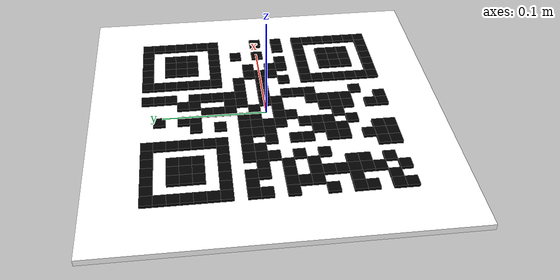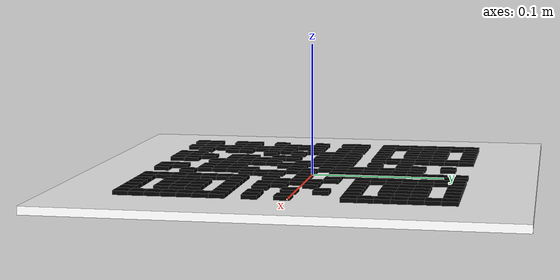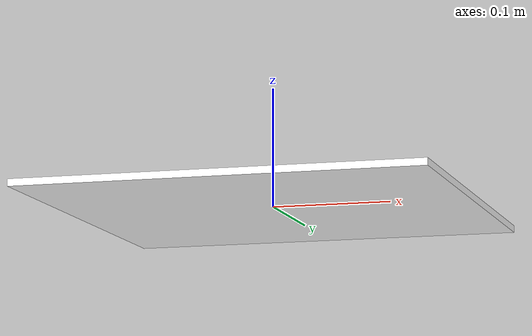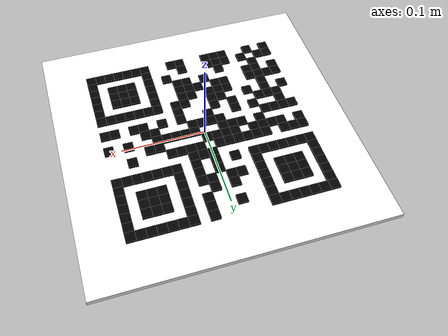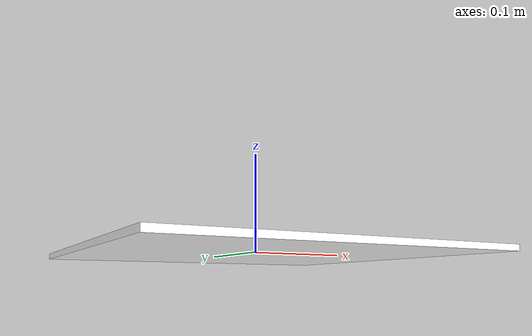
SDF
<?xml version="1.0"?>
<sdf version="1.8">
<model name="phase9_qr_geometry"><static>true</static><link name="link">
<visual name="white"><pose>0 0 0 0 0 0</pose><geometry><box><size>0.34 0.34 0.006</size></box></geometry><material><ambient>1 1 1 1</ambient><diffuse>1 1 1 1</diffuse></material></visual>
<visual name="m_0_0"><pose>0.1142857 0.1142857 0.004 0 0 0</pose><geometry><box><size>0.0114286 0.0114286 0.004</size></box></geometry><material><ambient>0 0 0 1</ambient><diffuse>0 0 0 1</diffuse></material></visual>
<visual name="m_0_1"><pose>0.1142857 0.1028571 0.004 0 0 0</pose><geometry><box><size>0.0114286 0.0114286 0.004</size></box></geometry><material><ambient>0 0 0 1</ambient><diffuse>0 0 0 1</diffuse></material></visual>
<visual name="m_0_2"><pose>0.1142857 0.0914286 0.004 0 0 0</pose><geometry><box><size>0.0114286 0.0114286 0.004</size></box></geometry><material><ambient>0 0 0 1</ambient><diffuse>0 0 0 1</diffuse></material></visual>
<visual name="m_0_3"><pose>0.1142857 0.0800000 0.004 0 0 0</pose><geometry><box><size>0.0114286 0.0114286 0.004</size></box></geometry><material><ambient>0 0 0 1</ambient><diffuse>0 0 0 1</diffuse></material></visual>
<visual name="m_0_4"><pose>0.1142857 0.0685714 0.004 0 0 0</pose><geometry><box><size>0.0114286 0.0114286 0.004</size></box></geometry><material><ambient>0 0 0 1</ambient><diffuse>0 0 0 1</diffuse></material></visual>
<visual name="m_0_5"><pose>0.1142857 0.0571429 0.004 0 0 0</pose><geometry><box><size>0.0114286 0.0114286 0.004</size></box></geometry><material><ambient>0 0 0 1</ambient><diffuse>0 0 0 1</diffuse></material></visual>
<visual name="m_0_6"><pose>0.1142857 0.0457143 0.004 0 0 0</pose><geometry><box><size>0.0114286 0.0114286 0.004</size></box></geometry><material><ambient>0 0 0 1</ambient><diffuse>0 0 0 1</diffuse></material></visual>
<visual name="m_0_10"><pose>0.1142857 0.0000000 0.004 0 0 0</pose><geometry><box><size>0.0114286 0.0114286 0.004</size></box></geometry><material><ambient>0 0 0 1</ambient><diffuse>0 0 0 1</diffuse></material></visual>
<visual name="m_0_12"><pose>0.1142857 -0.0228571 0.004 0 0 0</pose><geometry><box><size>0.0114286 0.0114286 0.004</size></box></geometry><material><ambient>0 0 0 1</ambient><diffuse>0 0 0 1</diffuse></material></visual>
<visual name="m_0_14"><pose>0.1142857 -0.0457143 0.004 0 0 0</pose><geometry><box><size>0.0114286 0.0114286 0.004</size></box></geometry><material><ambient>0 0 0 1</ambient><diffuse>0 0 0 1</diffuse></material></visual>
<visual name="m_0_15"><pose>0.1142857 -0.0571429 0.004 0 0 0</pose><geometry><box><size>0.0114286 0.0114286 0.004</size></box></geometry><material><ambient>0 0 0 1</ambient><diffuse>0 0 0 1</diffuse></material></visual>
<visual name="m_0_16"><pose>0.1142857 -0.0685714 0.004 0 0 0</pose><geometry><box><size>0.0114286 0.0114286 0.004</size></box></geometry><material><ambient>0 0 0 1</ambient><diffuse>0 0 0 1</diffuse></material></visual>
<visual name="m_0_17"><pose>0.1142857 -0.0800000 0.004 0 0 0</pose><geometry><box><size>0.0114286 0.0114286 0.004</size></box></geometry><material><ambient>0 0 0 1</ambient><diffuse>0 0 0 1</diffuse></material></visual>
<visual name="m_0_18"><pose>0.1142857 -0.0914286 0.004 0 0 0</pose><geometry><box><size>0.0114286 0.0114286 0.004</size></box></geometry><material><ambient>0 0 0 1</ambient><diffuse>0 0 0 1</diffuse></material></visual>
<visual name="m_0_19"><pose>0.1142857 -0.1028571 0.004 0 0 0</pose><geometry><box><size>0.0114286 0.0114286 0.004</size></box></geometry><material><ambient>0 0 0 1</ambient><diffuse>0 0 0 1</diffuse></material></visual>
<visual name="m_0_20"><pose>0.1142857 -0.1142857 0.004 0 0 0</pose><geometry><box><size>0.0114286 0.0114286 0.004</size></box></geometry><material><ambient>0 0 0 1</ambient><diffuse>0 0 0 1</diffuse></material></visual>
<visual name="m_1_0"><pose>0.1028571 0.1142857 0.004 0 0 0</pose><geometry><box><size>0.0114286 0.0114286 0.004</size></box></geometry><material><ambient>0 0 0 1</ambient><diffuse>0 0 0 1</diffuse></material></visual>
<visual name="m_1_6"><pose>0.1028571 0.0457143 0.004 0 0 0</pose><geometry><box><size>0.0114286 0.0114286 0.004</size></box></geometry><material><ambient>0 0 0 1</ambient><diffuse>0 0 0 1</diffuse></material></visual>
<visual name="m_1_12"><pose>0.1028571 -0.0228571 0.004 0 0 0</pose><geometry><box><size>0.0114286 0.0114286 0.004</size></box></geometry><material><ambient>0 0 0 1</ambient><diffuse>0 0 0 1</diffuse></material></visual>
<visual name="m_1_14"><pose>0.1028571 -0.0457143 0.004 0 0 0</pose><geometry><box><size>0.0114286 0.0114286 0.004</size></box></geometry><material><ambient>0 0 0 1</ambient><diffuse>0 0 0 1</diffuse></material></visual>
<visual name="m_1_20"><pose>0.1028571 -0.1142857 0.004 0 0 0</pose><geometry><box><size>0.0114286 0.0114286 0.004</size></box></geometry><material><ambient>0 0 0 1</ambient><diffuse>0 0 0 1</diffuse></material></visual>
<visual name="m_2_0"><pose>0.0914286 0.1142857 0.004 0 0 0</pose><geometry><box><size>0.0114286 0.0114286 0.004</size></box></geometry><material><ambient>0 0 0 1</ambient><diffuse>0 0 0 1</diffuse></material></visual>
<visual name="m_2_2"><pose>0.0914286 0.0914286 0.004 0 0 0</pose><geometry><box><size>0.0114286 0.0114286 0.004</size></box></geometry><material><ambient>0 0 0 1</ambient><diffuse>0 0 0 1</diffuse></material></visual>
<visual name="m_2_3"><pose>0.0914286 0.0800000 0.004 0 0 0</pose><geometry><box><size>0.0114286 0.0114286 0.004</size></box></geometry><material><ambient>0 0 0 1</ambient><diffuse>0 0 0 1</diffuse></material></visual>
<visual name="m_2_4"><pose>0.0914286 0.0685714 0.004 0 0 0</pose><geometry><box><size>0.0114286 0.0114286 0.004</size></box></geometry><material><ambient>0 0 0 1</ambient><diffuse>0 0 0 1</diffuse></material></visual>
<visual name="m_2_6"><pose>0.0914286 0.0457143 0.004 0 0 0</pose><geometry><box><size>0.0114286 0.0114286 0.004</size></box></geometry><material><ambient>0 0 0 1</ambient><diffuse>0 0 0 1</diffuse></material></visual>
<visual name="m_2_8"><pose>0.0914286 0.0228571 0.004 0 0 0</pose><geometry><box><size>0.0114286 0.0114286 0.004</size></box></geometry><material><ambient>0 0 0 1</ambient><diffuse>0 0 0 1</diffuse></material></visual>
<visual name="m_2_10"><pose>0.0914286 0.0000000 0.004 0 0 0</pose><geometry><box><size>0.0114286 0.0114286 0.004</size></box></geometry><material><ambient>0 0 0 1</ambient><diffuse>0 0 0 1</diffuse></material></visual>
<visual name="m_2_14"><pose>0.0914286 -0.0457143 0.004 0 0 0</pose><geometry><box><size>0.0114286 0.0114286 0.004</size></box></geometry><material><ambient>0 0 0 1</ambient><diffuse>0 0 0 1</diffuse></material></visual>
<visual name="m_2_16"><pose>0.0914286 -0.0685714 0.004 0 0 0</pose><geometry><box><size>0.0114286 0.0114286 0.004</size></box></geometry><material><ambient>0 0 0 1</ambient><diffuse>0 0 0 1</diffuse></material></visual>
<visual name="m_2_17"><pose>0.0914286 -0.0800000 0.004 0 0 0</pose><geometry><box><size>0.0114286 0.0114286 0.004</size></box></geometry><material><ambient>0 0 0 1</ambient><diffuse>0 0 0 1</diffuse></material></visual>
<visual name="m_2_18"><pose>0.0914286 -0.0914286 0.004 0 0 0</pose><geometry><box><size>0.0114286 0.0114286 0.004</size></box></geometry><material><ambient>0 0 0 1</ambient><diffuse>0 0 0 1</diffuse></material></visual>
<visual name="m_2_20"><pose>0.0914286 -0.1142857 0.004 0 0 0</pose><geometry><box><size>0.0114286 0.0114286 0.004</size></box></geometry><material><ambient>0 0 0 1</ambient><diffuse>0 0 0 1</diffuse></material></visual>
<visual name="m_3_0"><pose>0.0800000 0.1142857 0.004 0 0 0</pose><geometry><box><size>0.0114286 0.0114286 0.004</size></box></geometry><material><ambient>0 0 0 1</ambient><diffuse>0 0 0 1</diffuse></material></visual>
<visual name="m_3_2"><pose>0.0800000 0.0914286 0.004 0 0 0</pose><geometry><box><size>0.0114286 0.0114286 0.004</size></box></geometry><material><ambient>0 0 0 1</ambient><diffuse>0 0 0 1</diffuse></material></visual>
<visual name="m_3_3"><pose>0.0800000 0.0800000 0.004 0 0 0</pose><geometry><box><size>0.0114286 0.0114286 0.004</size></box></geometry><material><ambient>0 0 0 1</ambient><diffuse>0 0 0 1</diffuse></material></visual>
<visual name="m_3_4"><pose>0.0800000 0.0685714 0.004 0 0 0</pose><geometry><box><size>0.0114286 0.0114286 0.004</size></box></geometry><material><ambient>0 0 0 1</ambient><diffuse>0 0 0 1</diffuse></material></visual>
<visual name="m_3_6"><pose>0.0800000 0.0457143 0.004 0 0 0</pose><geometry><box><size>0.0114286 0.0114286 0.004</size></box></geometry><material><ambient>0 0 0 1</ambient><diffuse>0 0 0 1</diffuse></material></visual>
<visual name="m_3_12"><pose>0.0800000 -0.0228571 0.004 0 0 0</pose><geometry><box><size>0.0114286 0.0114286 0.004</size></box></geometry><material><ambient>0 0 0 1</ambient><diffuse>0 0 0 1</diffuse></material></visual>
<visual name="m_3_14"><pose>0.0800000 -0.0457143 0.004 0 0 0</pose><geometry><box><size>0.0114286 0.0114286 0.004</size></box></geometry><material><ambient>0 0 0 1</ambient><diffuse>0 0 0 1</diffuse></material></visual>
<visual name="m_3_16"><pose>0.0800000 -0.0685714 0.004 0 0 0</pose><geometry><box><size>0.0114286 0.0114286 0.004</size></box></geometry><material><ambient>0 0 0 1</ambient><diffuse>0 0 0 1</diffuse></material></visual>
<visual name="m_3_17"><pose>0.0800000 -0.0800000 0.004 0 0 0</pose><geometry><box><size>0.0114286 0.0114286 0.004</size></box></geometry><material><ambient>0 0 0 1</ambient><diffuse>0 0 0 1</diffuse></material></visual>
<visual name="m_3_18"><pose>0.0800000 -0.0914286 0.004 0 0 0</pose><geometry><box><size>0.0114286 0.0114286 0.004</size></box></geometry><material><ambient>0 0 0 1</ambient><diffuse>0 0 0 1</diffuse></material></visual>
<visual name="m_3_20"><pose>0.0800000 -0.1142857 0.004 0 0 0</pose><geometry><box><size>0.0114286 0.0114286 0.004</size></box></geometry><material><ambient>0 0 0 1</ambient><diffuse>0 0 0 1</diffuse></material></visual>
<visual name="m_4_0"><pose>0.0685714 0.1142857 0.004 0 0 0</pose><geometry><box><size>0.0114286 0.0114286 0.004</size></box></geometry><material><ambient>0 0 0 1</ambient><diffuse>0 0 0 1</diffuse></material></visual>
<visual name="m_4_2"><pose>0.0685714 0.0914286 0.004 0 0 0</pose><geometry><box><size>0.0114286 0.0114286 0.004</size></box></geometry><material><ambient>0 0 0 1</ambient><diffuse>0 0 0 1</diffuse></material></visual>
<visual name="m_4_3"><pose>0.0685714 0.0800000 0.004 0 0 0</pose><geometry><box><size>0.0114286 0.0114286 0.004</size></box></geometry><material><ambient>0 0 0 1</ambient><diffuse>0 0 0 1</diffuse></material></visual>
<visual name="m_4_4"><pose>0.0685714 0.0685714 0.004 0 0 0</pose><geometry><box><size>0.0114286 0.0114286 0.004</size></box></geometry><material><ambient>0 0 0 1</ambient><diffuse>0 0 0 1</diffuse></material></visual>
<visual name="m_4_6"><pose>0.0685714 0.0457143 0.004 0 0 0</pose><geometry><box><size>0.0114286 0.0114286 0.004</size></box></geometry><material><ambient>0 0 0 1</ambient><diffuse>0 0 0 1</diffuse></material></visual>
<visual name="m_4_9"><pose>0.0685714 0.0114286 0.004 0 0 0</pose><geometry><box><size>0.0114286 0.0114286 0.004</size></box></geometry><material><ambient>0 0 0 1</ambient><diffuse>0 0 0 1</diffuse></material></visual>
<visual name="m_4_11"><pose>0.0685714 -0.0114286 0.004 0 0 0</pose><geometry><box><size>0.0114286 0.0114286 0.004</size></box></geometry><material><ambient>0 0 0 1</ambient><diffuse>0 0 0 1</diffuse></material></visual>
<visual name="m_4_12"><pose>0.0685714 -0.0228571 0.004 0 0 0</pose><geometry><box><size>0.0114286 0.0114286 0.004</size></box></geometry><material><ambient>0 0 0 1</ambient><diffuse>0 0 0 1</diffuse></material></visual>
<visual name="m_4_14"><pose>0.0685714 -0.0457143 0.004 0 0 0</pose><geometry><box><size>0.0114286 0.0114286 0.004</size></box></geometry><material><ambient>0 0 0 1</ambient><diffuse>0 0 0 1</diffuse></material></visual>
<visual name="m_4_16"><pose>0.0685714 -0.0685714 0.004 0 0 0</pose><geometry><box><size>0.0114286 0.0114286 0.004</size></box></geometry><material><ambient>0 0 0 1</ambient><diffuse>0 0 0 1</diffuse></material></visual>
<visual name="m_4_17"><pose>0.0685714 -0.0800000 0.004 0 0 0</pose><geometry><box><size>0.0114286 0.0114286 0.004</size></box></geometry><material><ambient>0 0 0 1</ambient><diffuse>0 0 0 1</diffuse></material></visual>
<visual name="m_4_18"><pose>0.0685714 -0.0914286 0.004 0 0 0</pose><geometry><box><size>0.0114286 0.0114286 0.004</size></box></geometry><material><ambient>0 0 0 1</ambient><diffuse>0 0 0 1</diffuse></material></visual>
<visual name="m_4_20"><pose>0.0685714 -0.1142857 0.004 0 0 0</pose><geometry><box><size>0.0114286 0.0114286 0.004</size></box></geometry><material><ambient>0 0 0 1</ambient><diffuse>0 0 0 1</diffuse></material></visual>
<visual name="m_5_0"><pose>0.0571429 0.1142857 0.004 0 0 0</pose><geometry><box><size>0.0114286 0.0114286 0.004</size></box></geometry><material><ambient>0 0 0 1</ambient><diffuse>0 0 0 1</diffuse></material></visual>
<visual name="m_5_6"><pose>0.0571429 0.0457143 0.004 0 0 0</pose><geometry><box><size>0.0114286 0.0114286 0.004</size></box></geometry><material><ambient>0 0 0 1</ambient><diffuse>0 0 0 1</diffuse></material></visual>
<visual name="m_5_9"><pose>0.0571429 0.0114286 0.004 0 0 0</pose><geometry><box><size>0.0114286 0.0114286 0.004</size></box></geometry><material><ambient>0 0 0 1</ambient><diffuse>0 0 0 1</diffuse></material></visual>
<visual name="m_5_10"><pose>0.0571429 0.0000000 0.004 0 0 0</pose><geometry><box><size>0.0114286 0.0114286 0.004</size></box></geometry><material><ambient>0 0 0 1</ambient><diffuse>0 0 0 1</diffuse></material></visual>
<visual name="m_5_11"><pose>0.0571429 -0.0114286 0.004 0 0 0</pose><geometry><box><size>0.0114286 0.0114286 0.004</size></box></geometry><material><ambient>0 0 0 1</ambient><diffuse>0 0 0 1</diffuse></material></visual>
<visual name="m_5_14"><pose>0.0571429 -0.0457143 0.004 0 0 0</pose><geometry><box><size>0.0114286 0.0114286 0.004</size></box></geometry><material><ambient>0 0 0 1</ambient><diffuse>0 0 0 1</diffuse></material></visual>
<visual name="m_5_20"><pose>0.0571429 -0.1142857 0.004 0 0 0</pose><geometry><box><size>0.0114286 0.0114286 0.004</size></box></geometry><material><ambient>0 0 0 1</ambient><diffuse>0 0 0 1</diffuse></material></visual>
<visual name="m_6_0"><pose>0.0457143 0.1142857 0.004 0 0 0</pose><geometry><box><size>0.0114286 0.0114286 0.004</size></box></geometry><material><ambient>0 0 0 1</ambient><diffuse>0 0 0 1</diffuse></material></visual>
<visual name="m_6_1"><pose>0.0457143 0.1028571 0.004 0 0 0</pose><geometry><box><size>0.0114286 0.0114286 0.004</size></box></geometry><material><ambient>0 0 0 1</ambient><diffuse>0 0 0 1</diffuse></material></visual>
<visual name="m_6_2"><pose>0.0457143 0.0914286 0.004 0 0 0</pose><geometry><box><size>0.0114286 0.0114286 0.004</size></box></geometry><material><ambient>0 0 0 1</ambient><diffuse>0 0 0 1</diffuse></material></visual>
<visual name="m_6_3"><pose>0.0457143 0.0800000 0.004 0 0 0</pose><geometry><box><size>0.0114286 0.0114286 0.004</size></box></geometry><material><ambient>0 0 0 1</ambient><diffuse>0 0 0 1</diffuse></material></visual>
<visual name="m_6_4"><pose>0.0457143 0.0685714 0.004 0 0 0</pose><geometry><box><size>0.0114286 0.0114286 0.004</size></box></geometry><material><ambient>0 0 0 1</ambient><diffuse>0 0 0 1</diffuse></material></visual>
<visual name="m_6_5"><pose>0.0457143 0.0571429 0.004 0 0 0</pose><geometry><box><size>0.0114286 0.0114286 0.004</size></box></geometry><material><ambient>0 0 0 1</ambient><diffuse>0 0 0 1</diffuse></material></visual>
<visual name="m_6_6"><pose>0.0457143 0.0457143 0.004 0 0 0</pose><geometry><box><size>0.0114286 0.0114286 0.004</size></box></geometry><material><ambient>0 0 0 1</ambient><diffuse>0 0 0 1</diffuse></material></visual>
<visual name="m_6_8"><pose>0.0457143 0.0228571 0.004 0 0 0</pose><geometry><box><size>0.0114286 0.0114286 0.004</size></box></geometry><material><ambient>0 0 0 1</ambient><diffuse>0 0 0 1</diffuse></material></visual>
<visual name="m_6_10"><pose>0.0457143 0.0000000 0.004 0 0 0</pose><geometry><box><size>0.0114286 0.0114286 0.004</size></box></geometry><material><ambient>0 0 0 1</ambient><diffuse>0 0 0 1</diffuse></material></visual>
<visual name="m_6_12"><pose>0.0457143 -0.0228571 0.004 0 0 0</pose><geometry><box><size>0.0114286 0.0114286 0.004</size></box></geometry><material><ambient>0 0 0 1</ambient><diffuse>0 0 0 1</diffuse></material></visual>
<visual name="m_6_14"><pose>0.0457143 -0.0457143 0.004 0 0 0</pose><geometry><box><size>0.0114286 0.0114286 0.004</size></box></geometry><material><ambient>0 0 0 1</ambient><diffuse>0 0 0 1</diffuse></material></visual>
<visual name="m_6_15"><pose>0.0457143 -0.0571429 0.004 0 0 0</pose><geometry><box><size>0.0114286 0.0114286 0.004</size></box></geometry><material><ambient>0 0 0 1</ambient><diffuse>0 0 0 1</diffuse></material></visual>
<visual name="m_6_16"><pose>0.0457143 -0.0685714 0.004 0 0 0</pose><geometry><box><size>0.0114286 0.0114286 0.004</size></box></geometry><material><ambient>0 0 0 1</ambient><diffuse>0 0 0 1</diffuse></material></visual>
<visual name="m_6_17"><pose>0.0457143 -0.0800000 0.004 0 0 0</pose><geometry><box><size>0.0114286 0.0114286 0.004</size></box></geometry><material><ambient>0 0 0 1</ambient><diffuse>0 0 0 1</diffuse></material></visual>
<visual name="m_6_18"><pose>0.0457143 -0.0914286 0.004 0 0 0</pose><geometry><box><size>0.0114286 0.0114286 0.004</size></box></geometry><material><ambient>0 0 0 1</ambient><diffuse>0 0 0 1</diffuse></material></visual>
<visual name="m_6_19"><pose>0.0457143 -0.1028571 0.004 0 0 0</pose><geometry><box><size>0.0114286 0.0114286 0.004</size></box></geometry><material><ambient>0 0 0 1</ambient><diffuse>0 0 0 1</diffuse></material></visual>
<visual name="m_6_20"><pose>0.0457143 -0.1142857 0.004 0 0 0</pose><geometry><box><size>0.0114286 0.0114286 0.004</size></box></geometry><material><ambient>0 0 0 1</ambient><diffuse>0 0 0 1</diffuse></material></visual>
<visual name="m_7_8"><pose>0.0342857 0.0228571 0.004 0 0 0</pose><geometry><box><size>0.0114286 0.0114286 0.004</size></box></geometry><material><ambient>0 0 0 1</ambient><diffuse>0 0 0 1</diffuse></material></visual>
<visual name="m_7_10"><pose>0.0342857 0.0000000 0.004 0 0 0</pose><geometry><box><size>0.0114286 0.0114286 0.004</size></box></geometry><material><ambient>0 0 0 1</ambient><diffuse>0 0 0 1</diffuse></material></visual>
<visual name="m_8_0"><pose>0.0228571 0.1142857 0.004 0 0 0</pose><geometry><box><size>0.0114286 0.0114286 0.004</size></box></geometry><material><ambient>0 0 0 1</ambient><diffuse>0 0 0 1</diffuse></material></visual>
<visual name="m_8_1"><pose>0.0228571 0.1028571 0.004 0 0 0</pose><geometry><box><size>0.0114286 0.0114286 0.004</size></box></geometry><material><ambient>0 0 0 1</ambient><diffuse>0 0 0 1</diffuse></material></visual>
<visual name="m_8_2"><pose>0.0228571 0.0914286 0.004 0 0 0</pose><geometry><box><size>0.0114286 0.0114286 0.004</size></box></geometry><material><ambient>0 0 0 1</ambient><diffuse>0 0 0 1</diffuse></material></visual>
<visual name="m_8_4"><pose>0.0228571 0.0685714 0.004 0 0 0</pose><geometry><box><size>0.0114286 0.0114286 0.004</size></box></geometry><material><ambient>0 0 0 1</ambient><diffuse>0 0 0 1</diffuse></material></visual>
<visual name="m_8_5"><pose>0.0228571 0.0571429 0.004 0 0 0</pose><geometry><box><size>0.0114286 0.0114286 0.004</size></box></geometry><material><ambient>0 0 0 1</ambient><diffuse>0 0 0 1</diffuse></material></visual>
<visual name="m_8_6"><pose>0.0228571 0.0457143 0.004 0 0 0</pose><geometry><box><size>0.0114286 0.0114286 0.004</size></box></geometry><material><ambient>0 0 0 1</ambient><diffuse>0 0 0 1</diffuse></material></visual>
<visual name="m_8_7"><pose>0.0228571 0.0342857 0.004 0 0 0</pose><geometry><box><size>0.0114286 0.0114286 0.004</size></box></geometry><material><ambient>0 0 0 1</ambient><diffuse>0 0 0 1</diffuse></material></visual>
<visual name="m_8_8"><pose>0.0228571 0.0228571 0.004 0 0 0</pose><geometry><box><size>0.0114286 0.0114286 0.004</size></box></geometry><material><ambient>0 0 0 1</ambient><diffuse>0 0 0 1</diffuse></material></visual>
<visual name="m_8_10"><pose>0.0228571 0.0000000 0.004 0 0 0</pose><geometry><box><size>0.0114286 0.0114286 0.004</size></box></geometry><material><ambient>0 0 0 1</ambient><diffuse>0 0 0 1</diffuse></material></visual>
<visual name="m_8_12"><pose>0.0228571 -0.0228571 0.004 0 0 0</pose><geometry><box><size>0.0114286 0.0114286 0.004</size></box></geometry><material><ambient>0 0 0 1</ambient><diffuse>0 0 0 1</diffuse></material></visual>
<visual name="m_8_13"><pose>0.0228571 -0.0342857 0.004 0 0 0</pose><geometry><box><size>0.0114286 0.0114286 0.004</size></box></geometry><material><ambient>0 0 0 1</ambient><diffuse>0 0 0 1</diffuse></material></visual>
<visual name="m_8_14"><pose>0.0228571 -0.0457143 0.004 0 0 0</pose><geometry><box><size>0.0114286 0.0114286 0.004</size></box></geometry><material><ambient>0 0 0 1</ambient><diffuse>0 0 0 1</diffuse></material></visual>
<visual name="m_8_18"><pose>0.0228571 -0.0914286 0.004 0 0 0</pose><geometry><box><size>0.0114286 0.0114286 0.004</size></box></geometry><material><ambient>0 0 0 1</ambient><diffuse>0 0 0 1</diffuse></material></visual>
<visual name="m_9_3"><pose>0.0114286 0.0800000 0.004 0 0 0</pose><geometry><box><size>0.0114286 0.0114286 0.004</size></box></geometry><material><ambient>0 0 0 1</ambient><diffuse>0 0 0 1</diffuse></material></visual>
<visual name="m_9_4"><pose>0.0114286 0.0685714 0.004 0 0 0</pose><geometry><box><size>0.0114286 0.0114286 0.004</size></box></geometry><material><ambient>0 0 0 1</ambient><diffuse>0 0 0 1</diffuse></material></visual>
<visual name="m_9_7"><pose>0.0114286 0.0342857 0.004 0 0 0</pose><geometry><box><size>0.0114286 0.0114286 0.004</size></box></geometry><material><ambient>0 0 0 1</ambient><diffuse>0 0 0 1</diffuse></material></visual>
<visual name="m_9_8"><pose>0.0114286 0.0228571 0.004 0 0 0</pose><geometry><box><size>0.0114286 0.0114286 0.004</size></box></geometry><material><ambient>0 0 0 1</ambient><diffuse>0 0 0 1</diffuse></material></visual>
<visual name="m_9_10"><pose>0.0114286 0.0000000 0.004 0 0 0</pose><geometry><box><size>0.0114286 0.0114286 0.004</size></box></geometry><material><ambient>0 0 0 1</ambient><diffuse>0 0 0 1</diffuse></material></visual>
<visual name="m_9_11"><pose>0.0114286 -0.0114286 0.004 0 0 0</pose><geometry><box><size>0.0114286 0.0114286 0.004</size></box></geometry><material><ambient>0 0 0 1</ambient><diffuse>0 0 0 1</diffuse></material></visual>
<visual name="m_9_14"><pose>0.0114286 -0.0457143 0.004 0 0 0</pose><geometry><box><size>0.0114286 0.0114286 0.004</size></box></geometry><material><ambient>0 0 0 1</ambient><diffuse>0 0 0 1</diffuse></material></visual>
<visual name="m_9_15"><pose>0.0114286 -0.0571429 0.004 0 0 0</pose><geometry><box><size>0.0114286 0.0114286 0.004</size></box></geometry><material><ambient>0 0 0 1</ambient><diffuse>0 0 0 1</diffuse></material></visual>
<visual name="m_9_16"><pose>0.0114286 -0.0685714 0.004 0 0 0</pose><geometry><box><size>0.0114286 0.0114286 0.004</size></box></geometry><material><ambient>0 0 0 1</ambient><diffuse>0 0 0 1</diffuse></material></visual>
<visual name="m_9_17"><pose>0.0114286 -0.0800000 0.004 0 0 0</pose><geometry><box><size>0.0114286 0.0114286 0.004</size></box></geometry><material><ambient>0 0 0 1</ambient><diffuse>0 0 0 1</diffuse></material></visual>
<visual name="m_9_20"><pose>0.0114286 -0.1142857 0.004 0 0 0</pose><geometry><box><size>0.0114286 0.0114286 0.004</size></box></geometry><material><ambient>0 0 0 1</ambient><diffuse>0 0 0 1</diffuse></material></visual>
<visual name="m_10_5"><pose>0.0000000 0.0571429 0.004 0 0 0</pose><geometry><box><size>0.0114286 0.0114286 0.004</size></box></geometry><material><ambient>0 0 0 1</ambient><diffuse>0 0 0 1</diffuse></material></visual>
<visual name="m_10_6"><pose>0.0000000 0.0457143 0.004 0 0 0</pose><geometry><box><size>0.0114286 0.0114286 0.004</size></box></geometry><material><ambient>0 0 0 1</ambient><diffuse>0 0 0 1</diffuse></material></visual>
<visual name="m_10_7"><pose>0.0000000 0.0342857 0.004 0 0 0</pose><geometry><box><size>0.0114286 0.0114286 0.004</size></box></geometry><material><ambient>0 0 0 1</ambient><diffuse>0 0 0 1</diffuse></material></visual>
<visual name="m_10_9"><pose>0.0000000 0.0114286 0.004 0 0 0</pose><geometry><box><size>0.0114286 0.0114286 0.004</size></box></geometry><material><ambient>0 0 0 1</ambient><diffuse>0 0 0 1</diffuse></material></visual>
<visual name="m_10_11"><pose>0.0000000 -0.0114286 0.004 0 0 0</pose><geometry><box><size>0.0114286 0.0114286 0.004</size></box></geometry><material><ambient>0 0 0 1</ambient><diffuse>0 0 0 1</diffuse></material></visual>
<visual name="m_10_15"><pose>0.0000000 -0.0571429 0.004 0 0 0</pose><geometry><box><size>0.0114286 0.0114286 0.004</size></box></geometry><material><ambient>0 0 0 1</ambient><diffuse>0 0 0 1</diffuse></material></visual>
<visual name="m_10_16"><pose>0.0000000 -0.0685714 0.004 0 0 0</pose><geometry><box><size>0.0114286 0.0114286 0.004</size></box></geometry><material><ambient>0 0 0 1</ambient><diffuse>0 0 0 1</diffuse></material></visual>
<visual name="m_10_17"><pose>0.0000000 -0.0800000 0.004 0 0 0</pose><geometry><box><size>0.0114286 0.0114286 0.004</size></box></geometry><material><ambient>0 0 0 1</ambient><diffuse>0 0 0 1</diffuse></material></visual>
<visual name="m_10_19"><pose>0.0000000 -0.1028571 0.004 0 0 0</pose><geometry><box><size>0.0114286 0.0114286 0.004</size></box></geometry><material><ambient>0 0 0 1</ambient><diffuse>0 0 0 1</diffuse></material></visual>
<visual name="m_10_20"><pose>0.0000000 -0.1142857 0.004 0 0 0</pose><geometry><box><size>0.0114286 0.0114286 0.004</size></box></geometry><material><ambient>0 0 0 1</ambient><diffuse>0 0 0 1</diffuse></material></visual>
<visual name="m_11_1"><pose>-0.0114286 0.1028571 0.004 0 0 0</pose><geometry><box><size>0.0114286 0.0114286 0.004</size></box></geometry><material><ambient>0 0 0 1</ambient><diffuse>0 0 0 1</diffuse></material></visual>
<visual name="m_11_3"><pose>-0.0114286 0.0800000 0.004 0 0 0</pose><geometry><box><size>0.0114286 0.0114286 0.004</size></box></geometry><material><ambient>0 0 0 1</ambient><diffuse>0 0 0 1</diffuse></material></visual>
<visual name="m_11_4"><pose>-0.0114286 0.0685714 0.004 0 0 0</pose><geometry><box><size>0.0114286 0.0114286 0.004</size></box></geometry><material><ambient>0 0 0 1</ambient><diffuse>0 0 0 1</diffuse></material></visual>
<visual name="m_11_8"><pose>-0.0114286 0.0228571 0.004 0 0 0</pose><geometry><box><size>0.0114286 0.0114286 0.004</size></box></geometry><material><ambient>0 0 0 1</ambient><diffuse>0 0 0 1</diffuse></material></visual>
<visual name="m_11_9"><pose>-0.0114286 0.0114286 0.004 0 0 0</pose><geometry><box><size>0.0114286 0.0114286 0.004</size></box></geometry><material><ambient>0 0 0 1</ambient><diffuse>0 0 0 1</diffuse></material></visual>
<visual name="m_11_11"><pose>-0.0114286 -0.0114286 0.004 0 0 0</pose><geometry><box><size>0.0114286 0.0114286 0.004</size></box></geometry><material><ambient>0 0 0 1</ambient><diffuse>0 0 0 1</diffuse></material></visual>
<visual name="m_11_12"><pose>-0.0114286 -0.0228571 0.004 0 0 0</pose><geometry><box><size>0.0114286 0.0114286 0.004</size></box></geometry><material><ambient>0 0 0 1</ambient><diffuse>0 0 0 1</diffuse></material></visual>
<visual name="m_11_16"><pose>-0.0114286 -0.0685714 0.004 0 0 0</pose><geometry><box><size>0.0114286 0.0114286 0.004</size></box></geometry><material><ambient>0 0 0 1</ambient><diffuse>0 0 0 1</diffuse></material></visual>
<visual name="m_12_4"><pose>-0.0228571 0.0685714 0.004 0 0 0</pose><geometry><box><size>0.0114286 0.0114286 0.004</size></box></geometry><material><ambient>0 0 0 1</ambient><diffuse>0 0 0 1</diffuse></material></visual>
<visual name="m_12_6"><pose>-0.0228571 0.0457143 0.004 0 0 0</pose><geometry><box><size>0.0114286 0.0114286 0.004</size></box></geometry><material><ambient>0 0 0 1</ambient><diffuse>0 0 0 1</diffuse></material></visual>
<visual name="m_12_8"><pose>-0.0228571 0.0228571 0.004 0 0 0</pose><geometry><box><size>0.0114286 0.0114286 0.004</size></box></geometry><material><ambient>0 0 0 1</ambient><diffuse>0 0 0 1</diffuse></material></visual>
<visual name="m_12_9"><pose>-0.0228571 0.0114286 0.004 0 0 0</pose><geometry><box><size>0.0114286 0.0114286 0.004</size></box></geometry><material><ambient>0 0 0 1</ambient><diffuse>0 0 0 1</diffuse></material></visual>
<visual name="m_12_10"><pose>-0.0228571 0.0000000 0.004 0 0 0</pose><geometry><box><size>0.0114286 0.0114286 0.004</size></box></geometry><material><ambient>0 0 0 1</ambient><diffuse>0 0 0 1</diffuse></material></visual>
<visual name="m_12_11"><pose>-0.0228571 -0.0114286 0.004 0 0 0</pose><geometry><box><size>0.0114286 0.0114286 0.004</size></box></geometry><material><ambient>0 0 0 1</ambient><diffuse>0 0 0 1</diffuse></material></visual>
<visual name="m_12_13"><pose>-0.0228571 -0.0342857 0.004 0 0 0</pose><geometry><box><size>0.0114286 0.0114286 0.004</size></box></geometry><material><ambient>0 0 0 1</ambient><diffuse>0 0 0 1</diffuse></material></visual>
<visual name="m_12_14"><pose>-0.0228571 -0.0457143 0.004 0 0 0</pose><geometry><box><size>0.0114286 0.0114286 0.004</size></box></geometry><material><ambient>0 0 0 1</ambient><diffuse>0 0 0 1</diffuse></material></visual>
<visual name="m_12_15"><pose>-0.0228571 -0.0571429 0.004 0 0 0</pose><geometry><box><size>0.0114286 0.0114286 0.004</size></box></geometry><material><ambient>0 0 0 1</ambient><diffuse>0 0 0 1</diffuse></material></visual>
<visual name="m_12_17"><pose>-0.0228571 -0.0800000 0.004 0 0 0</pose><geometry><box><size>0.0114286 0.0114286 0.004</size></box></geometry><material><ambient>0 0 0 1</ambient><diffuse>0 0 0 1</diffuse></material></visual>
<visual name="m_13_8"><pose>-0.0342857 0.0228571 0.004 0 0 0</pose><geometry><box><size>0.0114286 0.0114286 0.004</size></box></geometry><material><ambient>0 0 0 1</ambient><diffuse>0 0 0 1</diffuse></material></visual>
<visual name="m_13_9"><pose>-0.0342857 0.0114286 0.004 0 0 0</pose><geometry><box><size>0.0114286 0.0114286 0.004</size></box></geometry><material><ambient>0 0 0 1</ambient><diffuse>0 0 0 1</diffuse></material></visual>
<visual name="m_13_10"><pose>-0.0342857 0.0000000 0.004 0 0 0</pose><geometry><box><size>0.0114286 0.0114286 0.004</size></box></geometry><material><ambient>0 0 0 1</ambient><diffuse>0 0 0 1</diffuse></material></visual>
<visual name="m_13_14"><pose>-0.0342857 -0.0457143 0.004 0 0 0</pose><geometry><box><size>0.0114286 0.0114286 0.004</size></box></geometry><material><ambient>0 0 0 1</ambient><diffuse>0 0 0 1</diffuse></material></visual>
<visual name="m_13_15"><pose>-0.0342857 -0.0571429 0.004 0 0 0</pose><geometry><box><size>0.0114286 0.0114286 0.004</size></box></geometry><material><ambient>0 0 0 1</ambient><diffuse>0 0 0 1</diffuse></material></visual>
<visual name="m_13_16"><pose>-0.0342857 -0.0685714 0.004 0 0 0</pose><geometry><box><size>0.0114286 0.0114286 0.004</size></box></geometry><material><ambient>0 0 0 1</ambient><diffuse>0 0 0 1</diffuse></material></visual>
<visual name="m_13_19"><pose>-0.0342857 -0.1028571 0.004 0 0 0</pose><geometry><box><size>0.0114286 0.0114286 0.004</size></box></geometry><material><ambient>0 0 0 1</ambient><diffuse>0 0 0 1</diffuse></material></visual>
<visual name="m_13_20"><pose>-0.0342857 -0.1142857 0.004 0 0 0</pose><geometry><box><size>0.0114286 0.0114286 0.004</size></box></geometry><material><ambient>0 0 0 1</ambient><diffuse>0 0 0 1</diffuse></material></visual>
<visual name="m_14_0"><pose>-0.0457143 0.1142857 0.004 0 0 0</pose><geometry><box><size>0.0114286 0.0114286 0.004</size></box></geometry><material><ambient>0 0 0 1</ambient><diffuse>0 0 0 1</diffuse></material></visual>
<visual name="m_14_1"><pose>-0.0457143 0.1028571 0.004 0 0 0</pose><geometry><box><size>0.0114286 0.0114286 0.004</size></box></geometry><material><ambient>0 0 0 1</ambient><diffuse>0 0 0 1</diffuse></material></visual>
<visual name="m_14_2"><pose>-0.0457143 0.0914286 0.004 0 0 0</pose><geometry><box><size>0.0114286 0.0114286 0.004</size></box></geometry><material><ambient>0 0 0 1</ambient><diffuse>0 0 0 1</diffuse></material></visual>
<visual name="m_14_3"><pose>-0.0457143 0.0800000 0.004 0 0 0</pose><geometry><box><size>0.0114286 0.0114286 0.004</size></box></geometry><material><ambient>0 0 0 1</ambient><diffuse>0 0 0 1</diffuse></material></visual>
<visual name="m_14_4"><pose>-0.0457143 0.0685714 0.004 0 0 0</pose><geometry><box><size>0.0114286 0.0114286 0.004</size></box></geometry><material><ambient>0 0 0 1</ambient><diffuse>0 0 0 1</diffuse></material></visual>
<visual name="m_14_5"><pose>-0.0457143 0.0571429 0.004 0 0 0</pose><geometry><box><size>0.0114286 0.0114286 0.004</size></box></geometry><material><ambient>0 0 0 1</ambient><diffuse>0 0 0 1</diffuse></material></visual>
<visual name="m_14_6"><pose>-0.0457143 0.0457143 0.004 0 0 0</pose><geometry><box><size>0.0114286 0.0114286 0.004</size></box></geometry><material><ambient>0 0 0 1</ambient><diffuse>0 0 0 1</diffuse></material></visual>
<visual name="m_14_8"><pose>-0.0457143 0.0228571 0.004 0 0 0</pose><geometry><box><size>0.0114286 0.0114286 0.004</size></box></geometry><material><ambient>0 0 0 1</ambient><diffuse>0 0 0 1</diffuse></material></visual>
<visual name="m_14_10"><pose>-0.0457143 0.0000000 0.004 0 0 0</pose><geometry><box><size>0.0114286 0.0114286 0.004</size></box></geometry><material><ambient>0 0 0 1</ambient><diffuse>0 0 0 1</diffuse></material></visual>
<visual name="m_14_12"><pose>-0.0457143 -0.0228571 0.004 0 0 0</pose><geometry><box><size>0.0114286 0.0114286 0.004</size></box></geometry><material><ambient>0 0 0 1</ambient><diffuse>0 0 0 1</diffuse></material></visual>
<visual name="m_14_13"><pose>-0.0457143 -0.0342857 0.004 0 0 0</pose><geometry><box><size>0.0114286 0.0114286 0.004</size></box></geometry><material><ambient>0 0 0 1</ambient><diffuse>0 0 0 1</diffuse></material></visual>
<visual name="m_14_15"><pose>-0.0457143 -0.0571429 0.004 0 0 0</pose><geometry><box><size>0.0114286 0.0114286 0.004</size></box></geometry><material><ambient>0 0 0 1</ambient><diffuse>0 0 0 1</diffuse></material></visual>
<visual name="m_14_16"><pose>-0.0457143 -0.0685714 0.004 0 0 0</pose><geometry><box><size>0.0114286 0.0114286 0.004</size></box></geometry><material><ambient>0 0 0 1</ambient><diffuse>0 0 0 1</diffuse></material></visual>
<visual name="m_14_18"><pose>-0.0457143 -0.0914286 0.004 0 0 0</pose><geometry><box><size>0.0114286 0.0114286 0.004</size></box></geometry><material><ambient>0 0 0 1</ambient><diffuse>0 0 0 1</diffuse></material></visual>
<visual name="m_14_19"><pose>-0.0457143 -0.1028571 0.004 0 0 0</pose><geometry><box><size>0.0114286 0.0114286 0.004</size></box></geometry><material><ambient>0 0 0 1</ambient><diffuse>0 0 0 1</diffuse></material></visual>
<visual name="m_14_20"><pose>-0.0457143 -0.1142857 0.004 0 0 0</pose><geometry><box><size>0.0114286 0.0114286 0.004</size></box></geometry><material><ambient>0 0 0 1</ambient><diffuse>0 0 0 1</diffuse></material></visual>
<visual name="m_15_0"><pose>-0.0571429 0.1142857 0.004 0 0 0</pose><geometry><box><size>0.0114286 0.0114286 0.004</size></box></geometry><material><ambient>0 0 0 1</ambient><diffuse>0 0 0 1</diffuse></material></visual>
<visual name="m_15_6"><pose>-0.0571429 0.0457143 0.004 0 0 0</pose><geometry><box><size>0.0114286 0.0114286 0.004</size></box></geometry><material><ambient>0 0 0 1</ambient><diffuse>0 0 0 1</diffuse></material></visual>
<visual name="m_15_8"><pose>-0.0571429 0.0228571 0.004 0 0 0</pose><geometry><box><size>0.0114286 0.0114286 0.004</size></box></geometry><material><ambient>0 0 0 1</ambient><diffuse>0 0 0 1</diffuse></material></visual>
<visual name="m_15_9"><pose>-0.0571429 0.0114286 0.004 0 0 0</pose><geometry><box><size>0.0114286 0.0114286 0.004</size></box></geometry><material><ambient>0 0 0 1</ambient><diffuse>0 0 0 1</diffuse></material></visual>
<visual name="m_15_19"><pose>-0.0571429 -0.1028571 0.004 0 0 0</pose><geometry><box><size>0.0114286 0.0114286 0.004</size></box></geometry><material><ambient>0 0 0 1</ambient><diffuse>0 0 0 1</diffuse></material></visual>
<visual name="m_15_20"><pose>-0.0571429 -0.1142857 0.004 0 0 0</pose><geometry><box><size>0.0114286 0.0114286 0.004</size></box></geometry><material><ambient>0 0 0 1</ambient><diffuse>0 0 0 1</diffuse></material></visual>
<visual name="m_16_0"><pose>-0.0685714 0.1142857 0.004 0 0 0</pose><geometry><box><size>0.0114286 0.0114286 0.004</size></box></geometry><material><ambient>0 0 0 1</ambient><diffuse>0 0 0 1</diffuse></material></visual>
<visual name="m_16_2"><pose>-0.0685714 0.0914286 0.004 0 0 0</pose><geometry><box><size>0.0114286 0.0114286 0.004</size></box></geometry><material><ambient>0 0 0 1</ambient><diffuse>0 0 0 1</diffuse></material></visual>
<visual name="m_16_3"><pose>-0.0685714 0.0800000 0.004 0 0 0</pose><geometry><box><size>0.0114286 0.0114286 0.004</size></box></geometry><material><ambient>0 0 0 1</ambient><diffuse>0 0 0 1</diffuse></material></visual>
<visual name="m_16_4"><pose>-0.0685714 0.0685714 0.004 0 0 0</pose><geometry><box><size>0.0114286 0.0114286 0.004</size></box></geometry><material><ambient>0 0 0 1</ambient><diffuse>0 0 0 1</diffuse></material></visual>
<visual name="m_16_6"><pose>-0.0685714 0.0457143 0.004 0 0 0</pose><geometry><box><size>0.0114286 0.0114286 0.004</size></box></geometry><material><ambient>0 0 0 1</ambient><diffuse>0 0 0 1</diffuse></material></visual>
<visual name="m_16_8"><pose>-0.0685714 0.0228571 0.004 0 0 0</pose><geometry><box><size>0.0114286 0.0114286 0.004</size></box></geometry><material><ambient>0 0 0 1</ambient><diffuse>0 0 0 1</diffuse></material></visual>
<visual name="m_16_9"><pose>-0.0685714 0.0114286 0.004 0 0 0</pose><geometry><box><size>0.0114286 0.0114286 0.004</size></box></geometry><material><ambient>0 0 0 1</ambient><diffuse>0 0 0 1</diffuse></material></visual>
<visual name="m_16_10"><pose>-0.0685714 0.0000000 0.004 0 0 0</pose><geometry><box><size>0.0114286 0.0114286 0.004</size></box></geometry><material><ambient>0 0 0 1</ambient><diffuse>0 0 0 1</diffuse></material></visual>
<visual name="m_16_12"><pose>-0.0685714 -0.0228571 0.004 0 0 0</pose><geometry><box><size>0.0114286 0.0114286 0.004</size></box></geometry><material><ambient>0 0 0 1</ambient><diffuse>0 0 0 1</diffuse></material></visual>
<visual name="m_16_14"><pose>-0.0685714 -0.0457143 0.004 0 0 0</pose><geometry><box><size>0.0114286 0.0114286 0.004</size></box></geometry><material><ambient>0 0 0 1</ambient><diffuse>0 0 0 1</diffuse></material></visual>
<visual name="m_17_0"><pose>-0.0800000 0.1142857 0.004 0 0 0</pose><geometry><box><size>0.0114286 0.0114286 0.004</size></box></geometry><material><ambient>0 0 0 1</ambient><diffuse>0 0 0 1</diffuse></material></visual>
<visual name="m_17_2"><pose>-0.0800000 0.0914286 0.004 0 0 0</pose><geometry><box><size>0.0114286 0.0114286 0.004</size></box></geometry><material><ambient>0 0 0 1</ambient><diffuse>0 0 0 1</diffuse></material></visual>
<visual name="m_17_3"><pose>-0.0800000 0.0800000 0.004 0 0 0</pose><geometry><box><size>0.0114286 0.0114286 0.004</size></box></geometry><material><ambient>0 0 0 1</ambient><diffuse>0 0 0 1</diffuse></material></visual>
<visual name="m_17_4"><pose>-0.0800000 0.0685714 0.004 0 0 0</pose><geometry><box><size>0.0114286 0.0114286 0.004</size></box></geometry><material><ambient>0 0 0 1</ambient><diffuse>0 0 0 1</diffuse></material></visual>
<visual name="m_17_6"><pose>-0.0800000 0.0457143 0.004 0 0 0</pose><geometry><box><size>0.0114286 0.0114286 0.004</size></box></geometry><material><ambient>0 0 0 1</ambient><diffuse>0 0 0 1</diffuse></material></visual>
<visual name="m_17_9"><pose>-0.0800000 0.0114286 0.004 0 0 0</pose><geometry><box><size>0.0114286 0.0114286 0.004</size></box></geometry><material><ambient>0 0 0 1</ambient><diffuse>0 0 0 1</diffuse></material></visual>
<visual name="m_17_11"><pose>-0.0800000 -0.0114286 0.004 0 0 0</pose><geometry><box><size>0.0114286 0.0114286 0.004</size></box></geometry><material><ambient>0 0 0 1</ambient><diffuse>0 0 0 1</diffuse></material></visual>
<visual name="m_17_13"><pose>-0.0800000 -0.0342857 0.004 0 0 0</pose><geometry><box><size>0.0114286 0.0114286 0.004</size></box></geometry><material><ambient>0 0 0 1</ambient><diffuse>0 0 0 1</diffuse></material></visual>
<visual name="m_17_16"><pose>-0.0800000 -0.0685714 0.004 0 0 0</pose><geometry><box><size>0.0114286 0.0114286 0.004</size></box></geometry><material><ambient>0 0 0 1</ambient><diffuse>0 0 0 1</diffuse></material></visual>
<visual name="m_17_17"><pose>-0.0800000 -0.0800000 0.004 0 0 0</pose><geometry><box><size>0.0114286 0.0114286 0.004</size></box></geometry><material><ambient>0 0 0 1</ambient><diffuse>0 0 0 1</diffuse></material></visual>
<visual name="m_17_19"><pose>-0.0800000 -0.1028571 0.004 0 0 0</pose><geometry><box><size>0.0114286 0.0114286 0.004</size></box></geometry><material><ambient>0 0 0 1</ambient><diffuse>0 0 0 1</diffuse></material></visual>
<visual name="m_18_0"><pose>-0.0914286 0.1142857 0.004 0 0 0</pose><geometry><box><size>0.0114286 0.0114286 0.004</size></box></geometry><material><ambient>0 0 0 1</ambient><diffuse>0 0 0 1</diffuse></material></visual>
<visual name="m_18_2"><pose>-0.0914286 0.0914286 0.004 0 0 0</pose><geometry><box><size>0.0114286 0.0114286 0.004</size></box></geometry><material><ambient>0 0 0 1</ambient><diffuse>0 0 0 1</diffuse></material></visual>
<visual name="m_18_3"><pose>-0.0914286 0.0800000 0.004 0 0 0</pose><geometry><box><size>0.0114286 0.0114286 0.004</size></box></geometry><material><ambient>0 0 0 1</ambient><diffuse>0 0 0 1</diffuse></material></visual>
<visual name="m_18_4"><pose>-0.0914286 0.0685714 0.004 0 0 0</pose><geometry><box><size>0.0114286 0.0114286 0.004</size></box></geometry><material><ambient>0 0 0 1</ambient><diffuse>0 0 0 1</diffuse></material></visual>
<visual name="m_18_6"><pose>-0.0914286 0.0457143 0.004 0 0 0</pose><geometry><box><size>0.0114286 0.0114286 0.004</size></box></geometry><material><ambient>0 0 0 1</ambient><diffuse>0 0 0 1</diffuse></material></visual>
<visual name="m_18_8"><pose>-0.0914286 0.0228571 0.004 0 0 0</pose><geometry><box><size>0.0114286 0.0114286 0.004</size></box></geometry><material><ambient>0 0 0 1</ambient><diffuse>0 0 0 1</diffuse></material></visual>
<visual name="m_18_9"><pose>-0.0914286 0.0114286 0.004 0 0 0</pose><geometry><box><size>0.0114286 0.0114286 0.004</size></box></geometry><material><ambient>0 0 0 1</ambient><diffuse>0 0 0 1</diffuse></material></visual>
<visual name="m_18_11"><pose>-0.0914286 -0.0114286 0.004 0 0 0</pose><geometry><box><size>0.0114286 0.0114286 0.004</size></box></geometry><material><ambient>0 0 0 1</ambient><diffuse>0 0 0 1</diffuse></material></visual>
<visual name="m_18_13"><pose>-0.0914286 -0.0342857 0.004 0 0 0</pose><geometry><box><size>0.0114286 0.0114286 0.004</size></box></geometry><material><ambient>0 0 0 1</ambient><diffuse>0 0 0 1</diffuse></material></visual>
<visual name="m_18_14"><pose>-0.0914286 -0.0457143 0.004 0 0 0</pose><geometry><box><size>0.0114286 0.0114286 0.004</size></box></geometry><material><ambient>0 0 0 1</ambient><diffuse>0 0 0 1</diffuse></material></visual>
<visual name="m_18_15"><pose>-0.0914286 -0.0571429 0.004 0 0 0</pose><geometry><box><size>0.0114286 0.0114286 0.004</size></box></geometry><material><ambient>0 0 0 1</ambient><diffuse>0 0 0 1</diffuse></material></visual>
<visual name="m_18_16"><pose>-0.0914286 -0.0685714 0.004 0 0 0</pose><geometry><box><size>0.0114286 0.0114286 0.004</size></box></geometry><material><ambient>0 0 0 1</ambient><diffuse>0 0 0 1</diffuse></material></visual>
<visual name="m_18_17"><pose>-0.0914286 -0.0800000 0.004 0 0 0</pose><geometry><box><size>0.0114286 0.0114286 0.004</size></box></geometry><material><ambient>0 0 0 1</ambient><diffuse>0 0 0 1</diffuse></material></visual>
<visual name="m_18_18"><pose>-0.0914286 -0.0914286 0.004 0 0 0</pose><geometry><box><size>0.0114286 0.0114286 0.004</size></box></geometry><material><ambient>0 0 0 1</ambient><diffuse>0 0 0 1</diffuse></material></visual>
<visual name="m_18_20"><pose>-0.0914286 -0.1142857 0.004 0 0 0</pose><geometry><box><size>0.0114286 0.0114286 0.004</size></box></geometry><material><ambient>0 0 0 1</ambient><diffuse>0 0 0 1</diffuse></material></visual>
<visual name="m_19_0"><pose>-0.1028571 0.1142857 0.004 0 0 0</pose><geometry><box><size>0.0114286 0.0114286 0.004</size></box></geometry><material><ambient>0 0 0 1</ambient><diffuse>0 0 0 1</diffuse></material></visual>
<visual name="m_19_6"><pose>-0.1028571 0.0457143 0.004 0 0 0</pose><geometry><box><size>0.0114286 0.0114286 0.004</size></box></geometry><material><ambient>0 0 0 1</ambient><diffuse>0 0 0 1</diffuse></material></visual>
<visual name="m_19_8"><pose>-0.1028571 0.0228571 0.004 0 0 0</pose><geometry><box><size>0.0114286 0.0114286 0.004</size></box></geometry><material><ambient>0 0 0 1</ambient><diffuse>0 0 0 1</diffuse></material></visual>
<visual name="m_19_11"><pose>-0.1028571 -0.0114286 0.004 0 0 0</pose><geometry><box><size>0.0114286 0.0114286 0.004</size></box></geometry><material><ambient>0 0 0 1</ambient><diffuse>0 0 0 1</diffuse></material></visual>
<visual name="m_19_12"><pose>-0.1028571 -0.0228571 0.004 0 0 0</pose><geometry><box><size>0.0114286 0.0114286 0.004</size></box></geometry><material><ambient>0 0 0 1</ambient><diffuse>0 0 0 1</diffuse></material></visual>
<visual name="m_19_13"><pose>-0.1028571 -0.0342857 0.004 0 0 0</pose><geometry><box><size>0.0114286 0.0114286 0.004</size></box></geometry><material><ambient>0 0 0 1</ambient><diffuse>0 0 0 1</diffuse></material></visual>
<visual name="m_19_16"><pose>-0.1028571 -0.0685714 0.004 0 0 0</pose><geometry><box><size>0.0114286 0.0114286 0.004</size></box></geometry><material><ambient>0 0 0 1</ambient><diffuse>0 0 0 1</diffuse></material></visual>
<visual name="m_19_19"><pose>-0.1028571 -0.1028571 0.004 0 0 0</pose><geometry><box><size>0.0114286 0.0114286 0.004</size></box></geometry><material><ambient>0 0 0 1</ambient><diffuse>0 0 0 1</diffuse></material></visual>
<visual name="m_20_0"><pose>-0.1142857 0.1142857 0.004 0 0 0</pose><geometry><box><size>0.0114286 0.0114286 0.004</size></box></geometry><material><ambient>0 0 0 1</ambient><diffuse>0 0 0 1</diffuse></material></visual>
<visual name="m_20_1"><pose>-0.1142857 0.1028571 0.004 0 0 0</pose><geometry><box><size>0.0114286 0.0114286 0.004</size></box></geometry><material><ambient>0 0 0 1</ambient><diffuse>0 0 0 1</diffuse></material></visual>
<visual name="m_20_2"><pose>-0.1142857 0.0914286 0.004 0 0 0</pose><geometry><box><size>0.0114286 0.0114286 0.004</size></box></geometry><material><ambient>0 0 0 1</ambient><diffuse>0 0 0 1</diffuse></material></visual>
<visual name="m_20_3"><pose>-0.1142857 0.0800000 0.004 0 0 0</pose><geometry><box><size>0.0114286 0.0114286 0.004</size></box></geometry><material><ambient>0 0 0 1</ambient><diffuse>0 0 0 1</diffuse></material></visual>
<visual name="m_20_4"><pose>-0.1142857 0.0685714 0.004 0 0 0</pose><geometry><box><size>0.0114286 0.0114286 0.004</size></box></geometry><material><ambient>0 0 0 1</ambient><diffuse>0 0 0 1</diffuse></material></visual>
<visual name="m_20_5"><pose>-0.1142857 0.0571429 0.004 0 0 0</pose><geometry><box><size>0.0114286 0.0114286 0.004</size></box></geometry><material><ambient>0 0 0 1</ambient><diffuse>0 0 0 1</diffuse></material></visual>
<visual name="m_20_6"><pose>-0.1142857 0.0457143 0.004 0 0 0</pose><geometry><box><size>0.0114286 0.0114286 0.004</size></box></geometry><material><ambient>0 0 0 1</ambient><diffuse>0 0 0 1</diffuse></material></visual>
<visual name="m_20_8"><pose>-0.1142857 0.0228571 0.004 0 0 0</pose><geometry><box><size>0.0114286 0.0114286 0.004</size></box></geometry><material><ambient>0 0 0 1</ambient><diffuse>0 0 0 1</diffuse></material></visual>
<visual name="m_20_9"><pose>-0.1142857 0.0114286 0.004 0 0 0</pose><geometry><box><size>0.0114286 0.0114286 0.004</size></box></geometry><material><ambient>0 0 0 1</ambient><diffuse>0 0 0 1</diffuse></material></visual>
<visual name="m_20_11"><pose>-0.1142857 -0.0114286 0.004 0 0 0</pose><geometry><box><size>0.0114286 0.0114286 0.004</size></box></geometry><material><ambient>0 0 0 1</ambient><diffuse>0 0 0 1</diffuse></material></visual>
<visual name="m_20_14"><pose>-0.1142857 -0.0457143 0.004 0 0 0</pose><geometry><box><size>0.0114286 0.0114286 0.004</size></box></geometry><material><ambient>0 0 0 1</ambient><diffuse>0 0 0 1</diffuse></material></visual>
<visual name="m_20_16"><pose>-0.1142857 -0.0685714 0.004 0 0 0</pose><geometry><box><size>0.0114286 0.0114286 0.004</size></box></geometry><material><ambient>0 0 0 1</ambient><diffuse>0 0 0 1</diffuse></material></visual>
<visual name="m_20_17"><pose>-0.1142857 -0.0800000 0.004 0 0 0</pose><geometry><box><size>0.0114286 0.0114286 0.004</size></box></geometry><material><ambient>0 0 0 1</ambient><diffuse>0 0 0 1</diffuse></material></visual>
<visual name="m_20_19"><pose>-0.1142857 -0.1028571 0.004 0 0 0</pose><geometry><box><size>0.0114286 0.0114286 0.004</size></box></geometry><material><ambient>0 0 0 1</ambient><diffuse>0 0 0 1</diffuse></material></visual>
<visual name="m_20_20"><pose>-0.1142857 -0.1142857 0.004 0 0 0</pose><geometry><box><size>0.0114286 0.0114286 0.004</size></box></geometry><material><ambient>0 0 0 1</ambient><diffuse>0 0 0 1</diffuse></material></visual>
</link></model>
</sdf>
